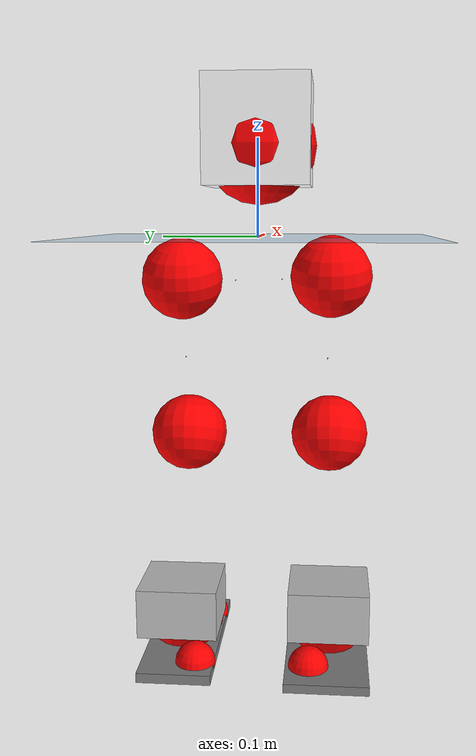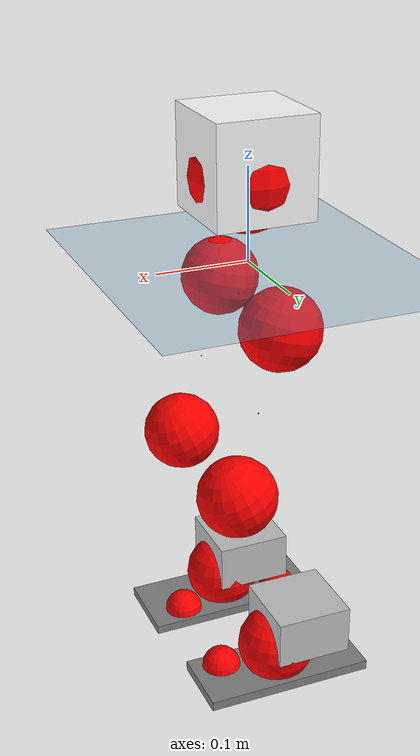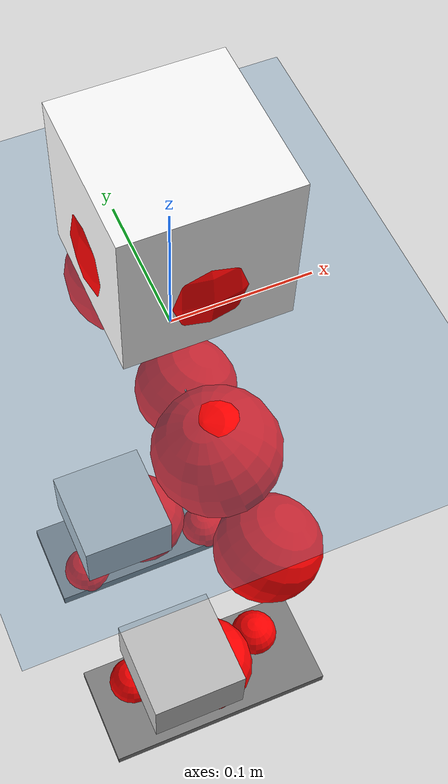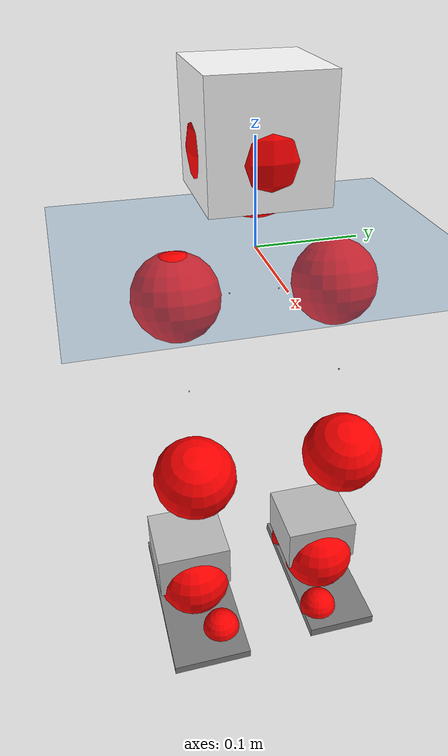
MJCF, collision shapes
<mujoco model="pi_12dof_release_v1">
  <compiler angle="radian" assetdir="assets" balanceinertia="true" inertiafromgeom="false"/>

  <option timestep="0.005" density="1.2" viscosity="2e-05"/>

  <size nkey="1"/>

  <visual>
    <quality shadowsize="8192"/>
    <map shadowclip="0.5"/>
  </visual>

  <default>
    <default class="/">
      <joint armature="0.01" damping="0.01" frictionloss="0.01"/>
      <geom contype="0" conaffinity="0" group="1" solref="-1000 -80"/>
      <site size="0.01 0.005 0.005" group="5"/>
      <general forcelimited="true" biastype="affine" gainprm="20" biasprm="0 -20 -0.5"/>
      <default class="foot">
        <geom size="0.0845 0.036 0.005" type="box" condim="6" group="4" priority="1" friction="0.9 0.2 0.2" solimp="0.015 1 0.005"/>
      </default>
      <default class="reward_collision_sphere">
        <geom group="5" rgba="1 0 0 1"/>
      </default>
    </default>
  </default>

  <asset>
    <texture type="skybox" colorspace="auto" name="//unnamed_texture_0" builtin="gradient" rgb1="0.95 0.95 0.95" rgb2="0.95 0.95 0.95" width="100" height="600"/>
    <texture type="2d" colorspace="auto" name="texplane" builtin="checker" rgb1="0.345 0.575 0.748" rgb2="0.345 0.575 0.748" markrgb="1 1 1" width="512" height="512"/>
    <material name="MatPlane" class="/" texture="texplane" texuniform="true" texrepeat="2 2" specular="0.9"/>
    <mesh name="baselink_1" class="/" file="baselink_1.STL"/>
    <mesh name="r_hip_pitch_link" class="/" file="r_hip_pitch_link.STL"/>
    <mesh name="r_hip_roll_link" class="/" file="r_hip_roll_link.STL"/>
    <mesh name="r_thigh_link" class="/" file="r_thigh_link.STL"/>
    <mesh name="r_calf_link" class="/" file="r_calf_link.STL"/>
    <mesh name="r_ankle_pitch_link" class="/" file="r_ankle_pitch_link.STL"/>
    <mesh name="r_ankle_roll_link" class="/" file="r_ankle_roll_link.STL"/>
    <mesh name="l_hip_pitch_link" class="/" file="l_hip_pitch_link.STL"/>
    <mesh name="l_hip_roll_link" class="/" file="l_hip_roll_link.STL"/>
    <mesh name="l_thigh_link" class="/" file="l_thigh_link.STL"/>
    <mesh name="l_calf_link" class="/" file="l_calf_link.STL"/>
    <mesh name="l_ankle_pitch_link" class="/" file="l_ankle_pitch_link.STL"/>
    <mesh name="l_ankle_roll_link" class="/" file="l_ankle_roll_link.STL"/>
  </asset>

  <worldbody>
    <geom name="floor" class="/" size="100 100 0.125" type="plane" group="0" material="MatPlane"/>
    <light name="toplight_shadow" class="/" pos="0 0 5" dir="0.0990148 0.0990148 -0.990148" type="directional" ambient="0.04 0.04 0.04" diffuse="0.55 0.55 0.55" specular="0.12 0.12 0.12"/>
    <light name="toplight_fill" class="/" pos="0 0 5" dir="0.0990148 0.0990148 -0.990148" type="directional" castshadow="false" ambient="0.04 0.04 0.04" diffuse="0.3 0.3 0.3" specular="0.08 0.08 0.08"/>
    <body name="trunk" pos="0.00179115 -0.00127656 -0.00269097" quat="1 0.000104244 5.43615e-05 3.42684e-05">
      <inertial pos="0.00454476 -0.00331502 0.0549265" quat="0.698939 -0.0023714 0.0126737 0.715065" mass="2.79838" diaginertia="0.00587508 0.00789628 0.0184507"/>
      <joint name="//unnamed_joint_0" type="free"/>
      <geom name="//unnamed_geom_1" class="/" type="mesh" density="0" rgba="1 1 1 1" mesh="baselink_1"/>
      <geom name="//unnamed_geom_2" class="/" size="0.0537325 0.0537325 0.0537325" pos="0 0 0.107666" type="box" rgba="1 1 1 1"/>
      <geom name="//unnamed_geom_3" class="reward_collision_sphere" size="0.0591058" pos="0 0 0.0942079"/>
      <site name="imu" class="/" pos="-0.00425752 0.0134375 -0.0121631" size="0.0107465"/>
      <camera name="track" class="/" pos="0 -1.94289 0" quat="0.707107 0.707107 0 0" mode="trackcom"/>
      <camera name="ego_camera" class="/" pos="0.0680012 0 0.242249" quat="-0.5 -0.5 0.5 0.5"/>
      <body name="r_hip_pitch_link" pos="-0.00161683 -0.0243834 -0.0413491" quat="0.9923 0.000219381 -0.123854 5.63086e-05">
        <inertial pos="0.00343986 -0.0563638 -0.00261738" quat="-0.0177414 0.704855 -0.0289598 0.708538" mass="0.450851" diaginertia="6.49601e-05 8.56717e-05 0.00037486"/>
        <joint name="r_hip_pitch_joint" class="/" pos="0 0 0" axis="-0.00663833 -0.999977 -0.00114426" stiffness="0.0150991" range="-1.75351 1.3016" armature="0.0108493" damping="0.0145668" frictionloss="0.0113755"/>
        <geom name="//unnamed_geom_4" class="/" type="mesh" density="0" rgba="0.75294 0.75294 0.75294 1" mesh="r_hip_pitch_link"/>
        <geom name="//unnamed_geom_5" class="/" size="0.000537325 0.000537325 0.000537325" type="box" rgba="0.75294 0.75294 0.75294 1"/>
        <body name="r_hip_roll_link" pos="0.000468065 -0.0516538 0.00274933" quat="1 1.25488e-05 -1.18761e-06 3.84877e-05">
          <inertial pos="-0.00350086 0.000155509 -0.0825813" quat="0.705973 -0.0791895 -0.0818824 0.699018" mass="0.465023" diaginertia="0.000202671 0.000246129 0.000544188"/>
          <joint name="r_hip_roll_joint" class="/" pos="0 0 0" axis="-1 0.000870908 -0.000486529" stiffness="0.00129939" range="-0.122072 0.545446" armature="0.0112757" damping="0.00557791" frictionloss="0.0103278"/>
          <geom name="//unnamed_geom_6" class="/" type="mesh" density="0" rgba="0.75294 0.75294 0.75294 1" mesh="r_hip_roll_link"/>
          <geom name="//unnamed_geom_7" class="/" size="0.000537325 0.000537325 0.000537325" type="box" rgba="0.75294 0.75294 0.75294 1"/>
          <geom name="//unnamed_geom_8" class="reward_collision_sphere" size="0.042986"/>
          <body name="r_thigh_link" pos="0.0013549 0.00293562 -0.093766" quat="1 -0.000120274 0.000594192 0.000489666">
            <inertial pos="0.0020857 0.00331372 -0.0648073" quat="0.738204 0.674572 0.00230307 -0.00124957" mass="0.143735" diaginertia="7.38046e-05 8.40939e-05 0.000249907"/>
            <joint name="r_thigh_joint" class="/" pos="0 0 0" axis="-0.00127298 0.00139075 -0.999998" stiffness="0.0141397" range="-0.309265 0.62923" armature="0.0109189" damping="0.0201085" frictionloss="0.0109314"/>
            <geom name="//unnamed_geom_9" class="/" type="mesh" density="0" rgba="0.75294 0.75294 0.75294 1" mesh="r_thigh_link"/>
            <geom name="//unnamed_geom_10" class="/" size="0.000537325 0.000537325 0.000537325" type="box" rgba="0.75294 0.75294 0.75294 1"/>
            <body name="r_calf_link" pos="0.00148712 -0.00330843 -0.0934426" quat="0.947241 -2.33982e-05 0.320521 -0.000314604">
              <inertial pos="0.000184245 0.00171983 -0.0939232" quat="0.999965 -0.00415629 0.000954571 0.00719357" mass="0.981239" diaginertia="0.00215764 0.00299964 0.00076604"/>
              <joint name="r_calf_joint" class="/" pos="0 0 0" axis="0.000435526 -0.999994 0.0033531" range="-1.6432 0.656312" armature="0.00914956" damping="0.0169272" frictionloss="0.00935137"/>
              <geom name="//unnamed_geom_11" class="/" type="mesh" density="0" rgba="0.75294 0.75294 0.75294 1" mesh="r_calf_link"/>
              <geom name="//unnamed_geom_12" class="/" size="0.000537325 0.000537325 0.000537325" type="box" rgba="0.75294 0.75294 0.75294 1"/>
              <geom name="//unnamed_geom_13" class="reward_collision_sphere" size="0.042986"/>
              <body name="r_ankle_pitch_link" pos="0.0017751 -0.00182377 -0.189142" quat="0.98016 -0.000548182 -0.198206 -0.000106717">
                <inertial pos="0.00319725 0.00596876 -0.00272887" quat="0.000402431 0.706935 0.00280812 0.707272" mass="0.21805" diaginertia="0.000180553 0.000179328 0.000509141"/>
                <joint name="r_ankle_pitch_joint" class="/" pos="0 0 0" axis="0.00478573 -0.999929 -0.0108815" stiffness="0.0098517" range="-1.30305 0.512921" armature="0.0100627" damping="0.0103285" frictionloss="0.0099775"/>
                <geom name="//unnamed_geom_14" class="/" type="mesh" density="0" rgba="0.75294 0.75294 0.75294 1" mesh="r_ankle_pitch_link"/>
                <geom name="//unnamed_geom_15" class="/" size="0.0419114 0.042986 0.0268663" type="box" rgba="0.75294 0.75294 0.75294 1"/>
                <body name="r_ankle_roll_link" pos="0.0697295 0.00123679 -0.000415392" quat="1 -1.32282e-05 -3.10644e-06 2.47934e-07">
                  <inertial pos="-0.0191303 -0.000184994 -0.0219415" quat="0.563473 0.43203 0.43308 0.555239" mass="0.663844" diaginertia="0.00069224 0.000881183 0.001243"/>
                  <joint name="r_ankle_roll_joint" class="/" pos="0 0 0" axis="-0.99984 0.00158141 -0.0177982" range="-0.154079 0.15156" armature="0.0116634" damping="0.00112167" frictionloss="0.0102515"/>
                  <geom name="//unnamed_geom_16" class="/" type="mesh" density="0" rgba="0.75294 0.75294 0.75294 1" mesh="r_ankle_roll_link"/>
                  <geom name="//unnamed_geom_17" class="/" type="mesh" rgba="0.75294 0.75294 0.75294 1" mesh="r_ankle_roll_link"/>
                  <geom name="right_foot" class="foot" size="0.101925 0.0442673 0.00478283" pos="-0.0462408 0 -0.0592164"/>
                  <geom name="//unnamed_geom_19" class="reward_collision_sphere" size="0.042986" pos="-0.0453341 0 -0.0269165"/>
                  <geom name="//unnamed_geom_20" class="reward_collision_sphere" size="0.021493" pos="0.0136002 0.0194289 -0.0538331"/>
                  <geom name="//unnamed_geom_21" class="reward_collision_sphere" size="0.021493" pos="-0.108802 0.0194289 -0.0538331"/>
                  <site name="right_foot" class="foot" pos="-0.0462408 0 -0.0592164" size="0.0107465"/>
                </body>
              </body>
            </body>
          </body>
        </body>
      </body>
      <body name="l_hip_pitch_link" pos="-0.00254988 0.0250409 -0.0426307" quat="0.992034 -0.000641304 -0.125967 0.00102818">
        <inertial pos="-0.00103052 0.0499817 -0.000543814" quat="-0.0380801 0.70578 0.0303991 0.706753" mass="0.493148" diaginertia="7.78959e-05 9.147e-05 0.000428897"/>
        <joint name="l_hip_pitch_joint" class="/" pos="0 0 0" axis="0.00788054 0.999955 -0.00534795" range="-1.20543 1.73385" armature="0.0111408" damping="0.00486215" frictionloss="0.0121785"/>
        <geom name="//unnamed_geom_22" class="/" type="mesh" density="0" rgba="0.75294 0.75294 0.75294 1" mesh="l_hip_pitch_link"/>
        <geom name="//unnamed_geom_23" class="/" size="0.000537325 0.000537325 0.000537325" type="box" rgba="0.75294 0.75294 0.75294 1"/>
        <body name="l_hip_roll_link" pos="0.00112868 0.0570023 0.000729946" quat="1 -0.00062216 -0.000222739 -0.000155804">
          <inertial pos="-0.00216395 -0.000860839 -0.084161" quat="0.700102 -0.0729328 -0.0779501 0.706018" mass="0.482763" diaginertia="0.000210622 0.000238687 0.000586414"/>
          <joint name="l_hip_roll_joint" class="/" pos="0 0 0" axis="-0.999932 -0.0108229 0.00435376" range="-0.552542 0.061488" armature="0.0111133" damping="0.0216873" frictionloss="0.0120734"/>
          <geom name="//unnamed_geom_24" class="/" type="mesh" density="0" rgba="0.75294 0.75294 0.75294 1" mesh="l_hip_roll_link"/>
          <geom name="//unnamed_geom_25" class="/" size="0.000537325 0.000537325 0.000537325" type="box" rgba="0.75294 0.75294 0.75294 1"/>
          <geom name="//unnamed_geom_26" class="reward_collision_sphere" size="0.042986"/>
          <body name="l_thigh_link" pos="0.00175724 0.00163601 -0.0910241" quat="1 -2.27491e-05 5.50057e-05 -0.000207853">
            <inertial pos="0.000811956 -0.00170523 -0.0618235" quat="0.674116 0.738626 -8.61269e-07 0.000442489" mass="0.140355" diaginertia="7.62752e-05 8.04791e-05 0.000254817"/>
            <joint name="l_thigh_joint" class="/" pos="0 0 0" axis="-0.00784108 -0.00462581 -0.999959" range="-0.592498 0.272395" armature="0.00941715" damping="0.00808488" frictionloss="0.0101761"/>
            <geom name="//unnamed_geom_27" class="/" type="mesh" density="0" rgba="0.75294 0.75294 0.75294 1" mesh="l_thigh_link"/>
            <geom name="//unnamed_geom_28" class="/" size="0.000537325 0.000537325 0.000537325" type="box" rgba="0.75294 0.75294 0.75294 1"/>
            <body name="l_calf_link" pos="6.32781e-05 0.00100807 -0.0944715" quat="0.947478 5.17878e-05 0.319822 0.000154482">
              <inertial pos="0.00033593 0.00404851 -0.0947008" quat="0.999994 -0.000336007 -0.00247103 0.00231722" mass="1.02138" diaginertia="0.00223955 0.00313066 0.00075339"/>
              <joint name="l_calf_joint" class="/" pos="0 0 0" axis="-0.00324996 0.999983 0.00478267" range="-0.682828 1.67492" armature="0.0118983" damping="0.00885447" frictionloss="0.00969539"/>
              <geom name="//unnamed_geom_29" class="/" type="mesh" density="0" rgba="0.75294 0.75294 0.75294 1" mesh="l_calf_link"/>
              <geom name="//unnamed_geom_30" class="/" size="0.000537325 0.000537325 0.000537325" type="box" rgba="0.75294 0.75294 0.75294 1"/>
              <geom name="//unnamed_geom_31" class="reward_collision_sphere" size="0.042986"/>
              <body name="l_ankle_pitch_link" pos="-0.000667666 -0.000520493 -0.188698" quat="0.979989 0.000415901 -0.199046 -0.001203">
                <inertial pos="0.00382357 -0.00329666 -0.000765778" quat="-0.00238749 0.70786 0.000591041 0.706349" mass="0.204358" diaginertia="0.000176096 0.000186732 0.000517255"/>
                <joint name="l_ankle_pitch_joint" class="/" pos="0 0 0" axis="-0.00322206 0.999966 0.00760756" range="-0.545936 1.3054" armature="0.0107201" damping="0.0120117" frictionloss="0.0121712"/>
                <geom name="//unnamed_geom_32" class="/" type="mesh" density="0" rgba="0.75294 0.75294 0.75294 1" mesh="l_ankle_pitch_link"/>
                <geom name="//unnamed_geom_33" class="/" size="0.0419114 0.042986 0.0268663" type="box" rgba="0.75294 0.75294 0.75294 1"/>
                <body name="l_ankle_roll_link" pos="0.0718037 0.000297584 0.000547709" quat="1 0.000631341 -0.000445107 0.000589027">
                  <inertial pos="-0.0245168 0.00114157 -0.0171927" quat="0.557974 0.438589 0.424045 0.562575" mass="0.639588" diaginertia="0.000731521 0.000903456 0.00130804"/>
                  <joint name="l_ankle_roll_joint" class="/" pos="0 0 0" axis="-0.999998 0.00148142 0.00116079" range="-0.205089 0.153437" armature="0.0106008" damping="0.0207564" frictionloss="0.0119854"/>
                  <geom name="//unnamed_geom_34" class="/" type="mesh" density="0" rgba="0.75294 0.75294 0.75294 1" mesh="l_ankle_roll_link"/>
                  <geom name="//unnamed_geom_35" class="/" type="mesh" rgba="0.75294 0.75294 0.75294 1" mesh="l_ankle_roll_link"/>
                  <geom name="left_foot" class="foot" size="0.0938629 0.0393796 0.00532912" pos="-0.0462408 0 -0.0592164"/>
                  <geom name="//unnamed_geom_37" class="reward_collision_sphere" size="0.042986" pos="-0.0453341 0 -0.0269165"/>
                  <geom name="//unnamed_geom_38" class="reward_collision_sphere" size="0.021493" pos="0.0136002 -0.0194289 -0.0538331"/>
                  <geom name="//unnamed_geom_39" class="reward_collision_sphere" size="0.021493" pos="-0.108802 -0.0194289 -0.0538331"/>
                  <site name="left_foot" class="foot" pos="-0.0462408 0 -0.0592164" size="0.0107465"/>
                </body>
              </body>
            </body>
          </body>
        </body>
      </body>
    </body>
  </worldbody>

  <contact>
    <pair class="/" geom1="floor" geom2="right_foot" name="//unnamed_contact_1"/>
    <pair class="/" geom1="floor" geom2="left_foot" name="//unnamed_contact_0"/>
  </contact>

  <actuator>
    <general name="r_hip_pitch_joint" class="/" joint="r_hip_pitch_joint" forcerange="-20.954 20.954" gainprm="22.1932" biasprm="0 -22.1932 -0.506124"/>
    <general name="r_hip_roll_joint" class="/" joint="r_hip_roll_joint" forcerange="-22.245 22.245" gainprm="22.1932" biasprm="0 -22.1932 -0.506124"/>
    <general name="r_thigh_joint" class="/" joint="r_thigh_joint" forcerange="-22.7065 22.7065" gainprm="22.1932" biasprm="0 -22.1932 -0.506124"/>
    <general name="r_calf_joint" class="/" joint="r_calf_joint" forcerange="-21.1465 21.1465" gainprm="22.1932" biasprm="0 -22.1932 -0.506124"/>
    <general name="r_ankle_pitch_joint" class="/" joint="r_ankle_pitch_joint" forcerange="-24.1214 24.1214" gainprm="22.1932" biasprm="0 -22.1932 -0.506124"/>
    <general name="r_ankle_roll_joint" class="/" joint="r_ankle_roll_joint" forcerange="-21.0375 21.0375" gainprm="22.1932" biasprm="0 -22.1932 -0.506124"/>
    <general name="l_hip_pitch_joint" class="/" joint="l_hip_pitch_joint" forcerange="-22.9619 22.9619" gainprm="22.1932" biasprm="0 -22.1932 -0.506124"/>
    <general name="l_hip_roll_joint" class="/" joint="l_hip_roll_joint" forcerange="-20.5923 20.5923" gainprm="22.1932" biasprm="0 -22.1932 -0.506124"/>
    <general name="l_thigh_joint" class="/" joint="l_thigh_joint" forcerange="-22.337 22.337" gainprm="22.1932" biasprm="0 -22.1932 -0.506124"/>
    <general name="l_calf_joint" class="/" joint="l_calf_joint" forcerange="-20.3105 20.3105" gainprm="22.1932" biasprm="0 -22.1932 -0.506124"/>
    <general name="l_ankle_pitch_joint" class="/" joint="l_ankle_pitch_joint" forcerange="-22.1761 22.1761" gainprm="22.1932" biasprm="0 -22.1932 -0.506124"/>
    <general name="l_ankle_roll_joint" class="/" joint="l_ankle_roll_joint" forcerange="-21.8276 21.8276" gainprm="22.1932" biasprm="0 -22.1932 -0.506124"/>
  </actuator>

  <sensor>
    <gyro site="imu" name="imu_angular_velocity"/>
    <velocimeter site="imu" name="imu_linear_velocity"/>
    <framelinvel objtype="site" objname="left_foot" name="left_foot_global_linear_velocity"/>
    <framelinvel objtype="site" objname="right_foot" name="right_foot_global_linear_velocity"/>
  </sensor>

  <keyframe>
    <key name="home" qpos="0 0 0.291 1 0 0 0 0.4 0 0 -0.8 0.4 0 -0.4 0 0 0.8 -0.4 0"/>
  </keyframe>
</mujoco>
